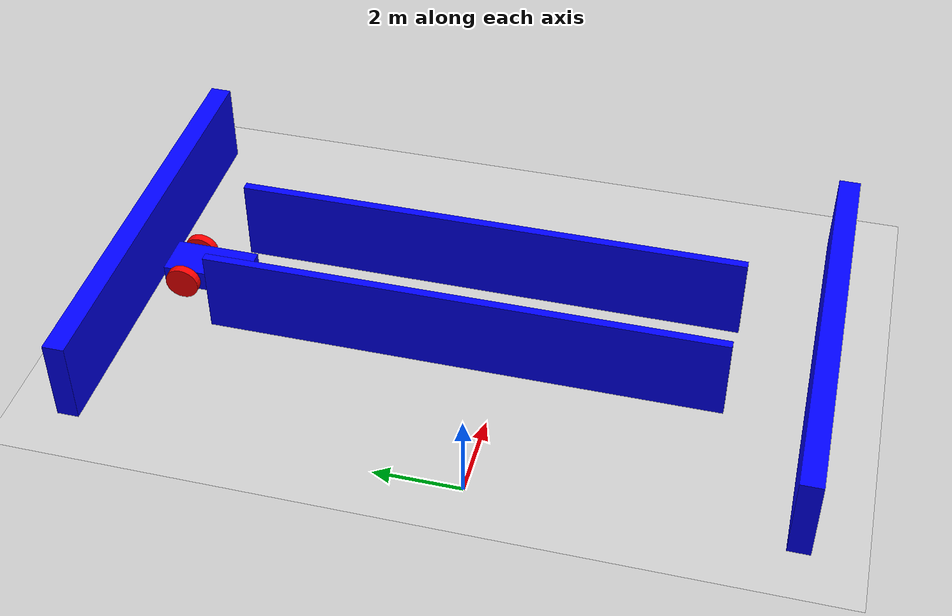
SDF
<?xml version="1.0" ?>
<!--Following tutorial: https://gazebosim.org/docs/harmonic/building_robot/-->>

<sdf version="1.10">
    <world name="car_world">
        <physics name="1ms" type="ignored">
            <max_step_size>0.001</max_step_size>
            <real_time_factor>1.0</real_time_factor>
        </physics>

        <plugin
            filename="gz-sim-physics-system"
            name="gz::sim::systems::Physics">
        </plugin>

        <plugin
            filename="gz-sim-user-commands-system"
            name="gz::sim::systems::UserCommands">
        </plugin>

        <plugin
            filename="gz-sim-scene-broadcaster-system"
            name="gz::sim::systems::SceneBroadcaster">
        </plugin>

        <plugin
            filename="gz-sim-imu-system"
            name="gz::sim::systems::Imu">
        </plugin>

        <plugin
            filename="gz-sim-contact-system"
            name="gz::sim::systems::Contact">
        </plugin>

        <plugin
            filename="gz-sim-sensors-system"
            name="gz::sim::systems::Sensors">
            <render_engine>ogre2</render_engine>
        </plugin>

        <light type="directional" name="sun">
            <cast_shadows>true</cast_shadows>
            <pose>0 0 10 0 0 0</pose>
            <diffuse>0.8 0.8 0.8 1</diffuse>
            <specular>0.2 0.2 0.2 1</specular>

            <attenuation>
                <range>1000</range>
                <constant>0.9</constant>
                <linear>0.01</linear>
                <quadratic>0.001</quadratic>
            </attenuation>

            <direction>-0.5 0.1 -0.9</direction>
        </light>

        <model name="ground_plane">
            <static>true</static>
            <link name="link">
                <collision name="collision">
                    <geometry>
                        <plane>
                        <normal>0 0 1</normal>
                        </plane>
                    </geometry>
                </collision>

                <visual name="visual">
                    <geometry>
                        <plane>
                        <normal>0 0 1</normal>
                        <size>100 100</size>
                        </plane>
                    </geometry>

                    <material>
                        <ambient>0.8 0.8 0.8 1</ambient>
                        <diffuse>0.8 0.8 0.8 1</diffuse>
                        <specular>0.8 0.8 0.8 1</specular>
                    </material>
                </visual>
            </link>
        </model>

        <!--Define the vehicle-->
        <model name='vehicle_blue' canonical_link='chassis'>
            <pose relative_to='world'>
                5 8 0 0 0 -1.5708
            </pose>

            <link name='chassis'>
                <pose relative_to='__model__'>
                    0.5 0 0.4 0 0 0
                </pose>

                <inertial>
                    <mass>1.14395</mass>
                    <inertia>
                        <ixx>0.095329</ixx>
                        <ixy>0</ixy>
                        <ixz>0</ixz>
                        <iyy>0.381317</iyy>
                        <iyz>0</iyz>
                        <izz>0.476646</izz>
                    </inertia>
                </inertial>

                <visual name='visual'>
                    <geometry>
                        <box>
                            <size>2.0 1.0 0.5</size>
                        </box>
                    </geometry>
                    <!--let's add color to our link-->
                    <material>
                        <ambient>0.0 0.0 1.0 1</ambient>
                        <diffuse>0.0 0.0 1.0 1</diffuse>
                        <specular>0.0 0.0 1.0 1</specular>
                    </material>
                </visual>

                <collision name='collision'>
                    <geometry>
                        <box>
                            <size>2.0 1.0 0.5</size>
                        </box>
                    </geometry>
                </collision>

                <sensor name="imu_sensor" type="imu">
                    <always_on>1</always_on>
                    <update_rate>1</update_rate>
                    <visualize>true</visualize>
                    <topic>imu</topic>
                </sensor>

                <sensor name='gpu_lidar' type='gpu_lidar'>"
                    <pose relative_to='lidar_frame'>0 0 0 0 0 0</pose>
                    <topic>lidar</topic>
                    <update_rate>10</update_rate>
                    <visualize>true</visualize>
                    <always_on>1</always_on>
                    <ray>
                        <scan>
                            <horizontal>
                                <samples>320</samples>
                                <resolution>1</resolution>
                                <min_angle>-3.14159</min_angle>
                                <max_angle>3.14159</max_angle>
                            </horizontal>
                            <vertical>
                                <samples>1</samples>
                                <resolution>0.01</resolution>
                                <min_angle>0</min_angle>
                                <max_angle>0</max_angle>
                            </vertical>
                        </scan>
                        <range>
                            <min>0.08</min>
                            <max>10.0</max>
                            <resolution>0.01</resolution>
                        </range>
                        <noise>
                            <type>gaussian</type>
                            <mean>0.0</mean>
                            <stddev>0.05</stddev>
                        </noise>
                    </ray>
                </sensor>
            </link>

            <link name='left_wheel'>
                <pose relative_to="chassis">
                    -0.5 0.6 0 -1.5707 0 0
                </pose>

                <inertial>
                    <mass>1</mass>
                    <inertia>
                        <ixx>0.043333</ixx>
                        <ixy>0</ixy>
                        <ixz>0</ixz>
                        <iyy>0.043333</iyy>
                        <iyz>0</iyz>
                        <izz>0.08</izz>
                    </inertia>
                </inertial>

                <visual name='visual'>
                    <geometry>
                        <cylinder>
                            <radius>0.4</radius>
                            <length>0.2</length>
                        </cylinder>
                    </geometry>

                    <material>
                        <ambient>1.0 0.0 0.0 1</ambient>
                        <diffuse>1.0 0.0 0.0 1</diffuse>
                        <specular>1.0 0.0 0.0 1</specular>
                    </material>
                </visual>

                <collision name='collision'>
                    <geometry>
                        <cylinder>
                            <radius>0.4</radius>
                            <length>0.2</length>
                        </cylinder>
                    </geometry>
                </collision>
            </link>

            <!--The same as left wheel but with different position-->
            <link name='right_wheel'>
                <pose relative_to="chassis">-0.5 -0.6 0 -1.5707 0 0</pose> <!--angles are in radian-->
                <inertial>
                    <mass>1</mass>
                    <inertia>
                        <ixx>0.043333</ixx>
                        <ixy>0</ixy>
                        <ixz>0</ixz>
                        <iyy>0.043333</iyy>
                        <iyz>0</iyz>
                        <izz>0.08</izz>
                    </inertia>
                </inertial>
                <visual name='visual'>
                    <geometry>
                        <cylinder>
                            <radius>0.4</radius>
                            <length>0.2</length>
                        </cylinder>
                    </geometry>
                    <material>
                        <ambient>1.0 0.0 0.0 1</ambient>
                        <diffuse>1.0 0.0 0.0 1</diffuse>
                        <specular>1.0 0.0 0.0 1</specular>
                    </material>
                </visual>
                <collision name='collision'>
                    <geometry>
                        <cylinder>
                            <radius>0.4</radius>
                            <length>0.2</length>
                        </cylinder>
                    </geometry>
                </collision>
            </link>

            <frame name="caster_frame" attached_to='chassis'>
                <pose>
                    0.8 0 -0.2 0 0 0
                </pose>
            </frame>

            <!--caster wheel-->
            <link name='caster'>
                <pose relative_to='caster_frame'/>
                <inertial>
                    <mass>1</mass>
                    <inertia>
                        <ixx>0.016</ixx>
                        <ixy>0</ixy>
                        <ixz>0</ixz>
                        <iyy>0.016</iyy>
                        <iyz>0</iyz>
                        <izz>0.016</izz>
                    </inertia>
                </inertial>

                <visual name='visual'>
                    <geometry>
                        <sphere>
                            <radius>0.2</radius>
                        </sphere>
                    </geometry>

                    <material>
                        <ambient>0.0 1 0.0 1</ambient>
                        <diffuse>0.0 1 0.0 1</diffuse>
                        <specular>0.0 1 0.0 1</specular>
                    </material>
                </visual>

                <collision name='collision'>
                    <geometry>
                        <sphere>
                            <radius>0.2</radius>
                        </sphere>
                    </geometry>
                </collision>
            </link>

            <joint name='left_wheel_joint' type='revolute'>
                <pose relative_to='left_wheel'/>

                <parent>chassis</parent>
                <child>left_wheel</child>

                <axis>
                    <xyz expressed_in='__model__'>0 1 0</xyz> <!--can be defined as any frame or even arbitrary frames-->
                    <limit>
                        <lower>-1.79769e+308</lower>    <!--negative infinity-->
                        <upper>1.79769e+308</upper>     <!--positive infinity-->
                    </limit>
                </axis>
            </joint>

            <joint name='right_wheel_joint' type='revolute'>
                <pose relative_to='right_wheel'/>

                <parent>chassis</parent>
                <child>right_wheel</child>

                <axis>
                    <xyz expressed_in='__model__'>0 1 0</xyz>
                    <limit>
                        <lower>-1.79769e+308</lower>    <!--negative infinity-->
                        <upper>1.79769e+308</upper>     <!--positive infinity-->
                    </limit>
                </axis>
            </joint>

            <joint name='caster_wheel' type='ball'>
                <parent>chassis</parent>
                <child>caster</child>
            </joint>

            <plugin filename="gz-sim-diff-drive-system" name="gz::sim::systems::DiffDrive">
                <left_joint>left_wheel_joint</left_joint>
                <right_joint>right_wheel_joint</right_joint>
                <wheel_separation>1.2</wheel_separation>
                <wheel_radius>0.4</wheel_radius>
                <odom_publish_frequency>1</odom_publish_frequency>
                <topic>cmd_vel</topic>
            </plugin>

            <frame name="lidar_frame" attached_to='chassis'>
                <pose>
                    0.8 0 0.5 0 0 0
                </pose>
            </frame>

        </model> <!--END VEHICLE CHASSIS MODEL-->

        <!-- Additional walls for drawing a block “I” -->

        <!-- ───── Top serif (horizontal) ───── -->
  <model name="wall_top" >
    <static>true</static>
    <!-- centered above corridor at y=7 -->
    <pose>5 9 1.0 0 0 0</pose>
    <link name="box">
      <visual name="visual">
        <geometry><box><size>10.0 0.5 2.0</size></box></geometry>
        <material>
          <ambient>0 0 1 1</ambient><diffuse>0 0 1 1</diffuse><specular>0 0 1 1</specular>
        </material>
      </visual>
      <collision name="collision">
        <geometry><box><size>10.0 0.5 2.0</size></box></geometry>
      </collision>
    </link>
  </model>

  <!-- ───── Bottom serif (horizontal) ───── -->
  <model name="wall_bottom">
    <static>true</static>
    <!-- centered below corridor at y=−5 -->
    <pose>5 -7 1.0 0 0 0</pose>
    <link name="box">
      <visual name="visual">
        <geometry><box><size>10.0 0.5 2.0</size></box></geometry>
        <material>
          <ambient>0 0 1 1</ambient><diffuse>0 0 1 1</diffuse><specular>0 0 1 1</specular>
        </material>
      </visual>
      <collision name="collision">
        <geometry><box><size>10.0 0.5 2.0</size></box></geometry>
      </collision>
    </link>
  </model>

  <!-- ───── Left inner bar (vertical) ───── -->
  <model name="wall_inner_left">
    <static>true</static>
    <!-- narrow bar at x=4.7, spanning the full y-length -->
    <pose>3.65 1 1.0 0 0 0</pose>
    <link name="box">
      <visual name="visual">
        <geometry><box><size>0.2 12.0 2.0</size></box></geometry>
        <material>
          <ambient>0 0 1 1</ambient><diffuse>0 0 1 1</diffuse><specular>0 0 1 1</specular>
        </material>
      </visual>
      <collision name="collision">
        <geometry><box><size>0.2 12.0 2.0</size></box></geometry>
      </collision>
    </link>
  </model>

  <!-- ───── Right inner bar (vertical) ───── -->
  <model name="wall_inner_right">
    <static>true</static>
    <pose>6.35 1 1.0 0 0 0</pose>
    <link name="box">
      <visual name="visual">
        <geometry><box><size>0.2 12.0 2.0</size></box></geometry>
        <material>
          <ambient>0 0 1 1</ambient><diffuse>0 0 1 1</diffuse><specular>0 0 1 1</specular>
        </material>
      </visual>
      <collision name="collision">
        <geometry><box><size>0.2 12.0 2.0</size></box></geometry>
      </collision>
    </link>
  </model>

    </world>

</sdf>
